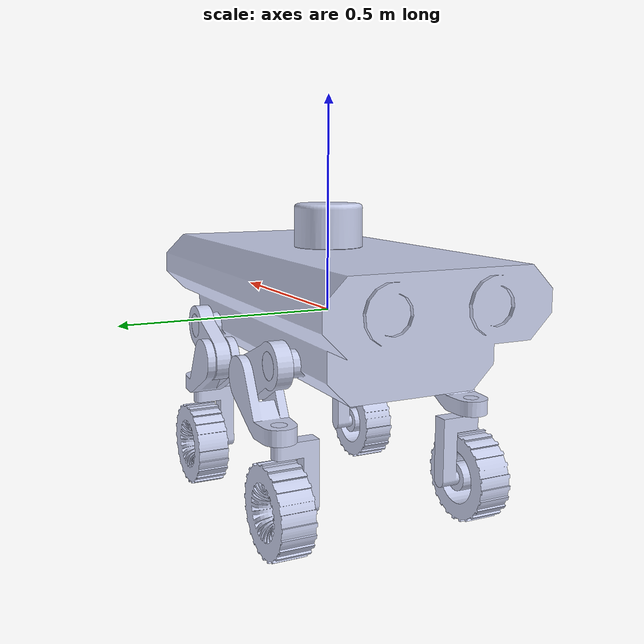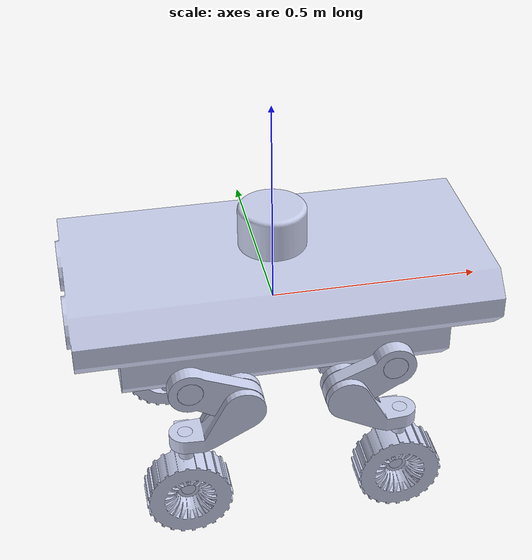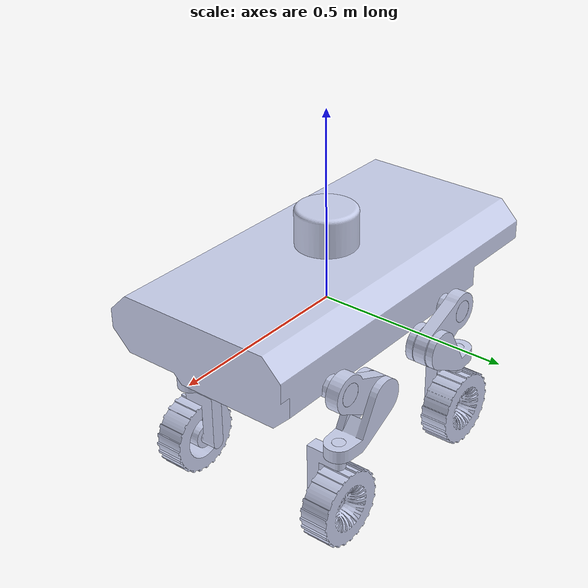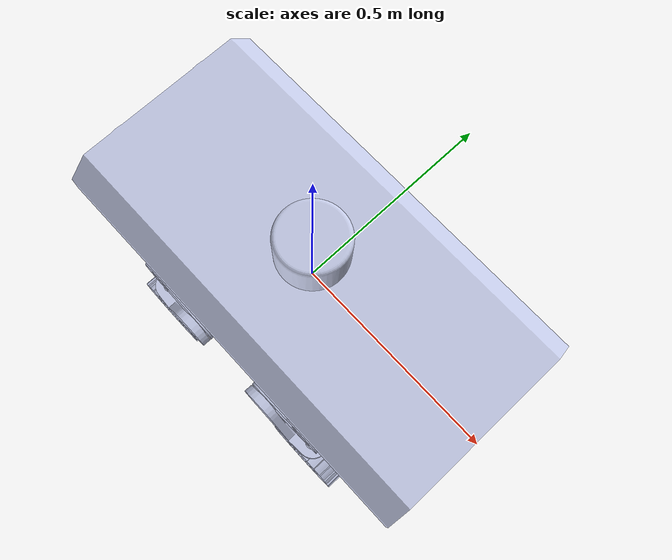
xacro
<?xml version="1.0"?>
<robot
  name="mobile_robot" xmlns:xacro="http://ros.org/wiki/xacro">

 # defining color
  <xacro:macro name="base_link_color">
      <visual>
      <material>
          <ambient>0.40 0.40 0.40 1.0</ambient>
          <diffuse>0.40 0.40 0.40 1.0</diffuse>
          <specular>0.1 0.1 0.1 1</specular>
          <emissive>0 0 0 0</emissive>
      </material>
      </visual>
  </xacro:macro>

<xacro:macro name="wheel_color">
      <visual>
      <material>
          <ambient>0.25 0.25 0.25 1.0</ambient>
          <diffuse>0.25 0.25 0.25 1.0</diffuse>
          <specular>0.1 0.1 0.1 1</specular>
          <emissive>0 0 0 0</emissive>
      </material>
      </visual>
  </xacro:macro>

  # Add this before base link
  <link name="dummy_link"></link>

  <link
    name="base_link">
    <inertial>
      <origin
        xyz="-0.0005957 2.423E-08 0.030374"
        rpy="0 0 0" />
      <mass
        value="102.84" />
      <inertia
        ixx="2.2901"
        ixy="-3.0555E-07"
        ixz="0.0027335"
        iyy="7.6029"
        iyz="2.2414E-07"
        izz="8.7762" />
    </inertial>
    <visual>
      <origin
        xyz="0 0 0"
        rpy="0 0 0" />
      <geometry>
        <mesh
          filename="package://mobile_robot/meshes/base_link.STL" />
      </geometry>
      <material
        name="">
        <color
          rgba="0.79216 0.81961 0.93333 1" />
      </material>
    </visual>
    <collision>
      <origin
        xyz="0 0 0"
        rpy="0 0 0" />
      <geometry>
        <mesh
          filename="package://mobile_robot/meshes/base_link.STL" />
      </geometry>
    </collision>
  </link>

 # Add this after base link
  <joint name="dummy_joint" type="fixed">
      <origin rpy="-1.5708 0 0" xyz="0 0 0" />
      <parent link="dummy_link"/>
      <child link="base_link"/>
  </joint>

  <link
    name="link_1a">
    <inertial>
      <origin
        xyz="-0.039563 0.0175 -0.051981"
        rpy="0 0 0" />
      <mass
        value="0.50283" />
      <inertia
        ixx="0.0013292"
        ixy="3.8948E-20"
        ixz="-0.00067322"
        iyy="0.0022628"
        iyz="4.5606E-20"
        izz="0.0010363" />
    </inertial>
    <visual>
      <origin
        xyz="0 0 0"
        rpy="0 0 0" />
      <geometry>
        <mesh
          filename="package://mobile_robot/meshes/link_1a.STL" />
      </geometry>
      <material
        name="">
        <color
          rgba="0.79216 0.81961 0.93333 1" />
      </material>
    </visual>
    <collision>
      <origin
        xyz="0 0 0"
        rpy="0 0 0" />
      <geometry>
        <mesh
          filename="package://mobile_robot/meshes/link_1a.STL" />
      </geometry>
    </collision>
  </link>
  <joint
    name="joint_1a"
    type="fixed">
    <origin
      xyz="-0.2365 0.06 0.219"
      rpy="1.5707963267949 0 -1.83259571459404" />
    <parent
      link="base_link" />
    <child
      link="link_1a" />
    <axis
      xyz="0 0 0" />
  </joint>
  <link
    name="link_2a">
    <inertial>
      <origin
        xyz="0.053752 5.5511E-17 0.012418"
        rpy="0 0 0" />
      <mass
        value="0.83985" />
      <inertia
        ixx="0.0010103"
        ixy="3.5159E-18"
        ixz="0.00045632"
        iyy="0.0038041"
        iyz="1.2247E-19"
        izz="0.0039259" />
    </inertial>
    <visual>
      <origin
        xyz="0 0 0"
        rpy="0 0 0" />
      <geometry>
        <mesh
          filename="package://mobile_robot/meshes/link_2a.STL" />
      </geometry>
      <material
        name="">
        <color
          rgba="0.79216 0.81961 0.93333 1" />
      </material>
    </visual>
    <collision>
      <origin
        xyz="0 0 0"
        rpy="0 0 0" />
      <geometry>
        <mesh
          filename="package://mobile_robot/meshes/link_2a.STL" />
      </geometry>
    </collision>
  </link>
  <joint
    name="joint_2a"
    type="fixed">
    <origin
      xyz="-0.065529 0.0175 -0.09221"
      rpy="3.1416 -1.0472 3.1416" />
    <parent
      link="link_1a" />
    <child
      link="link_2a" />
    <axis
      xyz="0 0 0" />
  </joint>
  <link
    name="link_3a">
    <inertial>
      <origin
        xyz="0.042962 0 -0.10116"
        rpy="0 0 0" />
      <mass
        value="0.35188" />
      <inertia
        ixx="0.0012021"
        ixy="2.7184E-20"
        ixz="0.00020915"
        iyy="0.0014526"
        iyz="-1.5189E-20"
        izz="0.00031657" />
    </inertial>
    <visual>
      <origin
        xyz="0 0 0"
        rpy="0 0 0" />
      <geometry>
        <mesh
          filename="package://mobile_robot/meshes/link_3a.STL" />
      </geometry>
      <material
        name="">
        <color
          rgba="0.79216 0.81961 0.93333 1" />
      </material>
    </visual>
    <collision>
      <origin
        xyz="0 0 0"
        rpy="0 0 0" />
      <geometry>
        <mesh
          filename="package://mobile_robot/meshes/link_3a.STL" />
      </geometry>
    </collision>
  </link>
  <joint
    name="joint_3a"
    type="revolute">
    <origin
      xyz="0.14328 0 -0.028284"
      rpy="2.3562 0 -1.5708" />
    <parent
      link="link_2a" />
    <child
      link="link_3a" />
    <axis
      xyz="0 0 1" />
    <limit
      lower="-3.14"
      upper="3.14"
      effort="100"
      velocity="0" />
  </joint>
  <link
    name="wheel_a">
    <inertial>
      <origin
        xyz="2.7756E-17 -0.00032568 -1.1102E-16"
        rpy="0 0 0" />
      <mass
        value="1.5436" />
      <inertia
        ixx="0.0055361"
        ixy="1.2164E-18"
        ixz="-4.5536E-18"
        iyy="0.0095744"
        iyz="8.0969E-19"
        izz="0.0055361" />
    </inertial>
    <visual>
      <origin
        xyz="0 0 0"
        rpy="0 0 0" />
      <geometry>
        <mesh
          filename="package://mobile_robot/meshes/wheel_a.STL" />
      </geometry>
      <material
        name="">
        <color
          rgba="0.79216 0.81961 0.93333 1" />
      </material>
    </visual>
    <collision>
      <origin
        xyz="0 0 0"
        rpy="0 0 0" />
      <geometry>
        <mesh
          filename="package://mobile_robot/meshes/wheel_a.STL" />
      </geometry>
    </collision>
  </link>
  <joint
    name="wheel_joint_a"
    type="continuous">
    <origin
      xyz="0 0 -0.181"
      rpy="3.1416 -1.007 -1.5708" />
    <parent
      link="link_3a" />
    <child
      link="wheel_a" />
    <axis
      xyz="0 1 0" />
  </joint>
  <link
    name="link_1b">
    <inertial>
      <origin
        xyz="-0.039563006306928 0.0175 -0.0519808529026815"
        rpy="0 0 0" />
      <mass
        value="0.502830874607731" />
      <inertia
        ixx="0.00132920865544275"
        ixy="-1.25790800504412E-19"
        ixz="-0.000673218555283649"
        iyy="0.0022628023452921"
        iyz="-1.36434319248097E-19"
        izz="0.00103625499341509" />
    </inertial>
    <visual>
      <origin
        xyz="0 0 0"
        rpy="0 0 0" />
      <geometry>
        <mesh
          filename="package://mobile_robot/meshes/link_1b.STL" />
      </geometry>
      <material
        name="">
        <color
          rgba="0.792156862745098 0.819607843137255 0.933333333333333 1" />
      </material>
    </visual>
    <collision>
      <origin
        xyz="0 0 0"
        rpy="0 0 0" />
      <geometry>
        <mesh
          filename="package://mobile_robot/meshes/link_1b.STL" />
      </geometry>
    </collision>
  </link>
  <joint
    name="joint_1b"
    type="fixed">
    <origin
      xyz="-0.2365 0.06 -0.254"
      rpy="1.5708 0 -1.8326" />
    <parent
      link="base_link" />
    <child
      link="link_1b" />
    <axis
      xyz="0 0 0" />
  </joint>
  <link
    name="link_2b">
    <inertial>
      <origin
        xyz="0.053752102153806 2.77555756156289E-17 0.012417867361845"
        rpy="0 0 0" />
      <mass
        value="0.839852789561809" />
      <inertia
        ixx="0.00101033633411804"
        ixy="2.18377621542409E-18"
        ixz="0.000456321325264451"
        iyy="0.00380409172847023"
        iyz="-4.12559137247788E-19"
        izz="0.00392594422883486" />
    </inertial>
    <visual>
      <origin
        xyz="0 0 0"
        rpy="0 0 0" />
      <geometry>
        <mesh
          filename="package://mobile_robot/meshes/link_2b.STL" />
      </geometry>
      <material
        name="">
        <color
          rgba="0.792156862745098 0.819607843137255 0.933333333333333 1" />
      </material>
    </visual>
    <collision>
      <origin
        xyz="0 0 0"
        rpy="0 0 0" />
      <geometry>
        <mesh
          filename="package://mobile_robot/meshes/link_2b.STL" />
      </geometry>
    </collision>
  </link>
  <joint
    name="joint_2b"
    type="fixed">
    <origin
      xyz="-0.065529 0.0175 -0.09221"
      rpy="3.1416 -1.0472 3.1416" />
    <parent
      link="link_1b" />
    <child
      link="link_2b" />
    <axis
      xyz="0 0 0" />
  </joint>
  <link
    name="link_3b">
    <inertial>
      <origin
        xyz="0.0429616361908162 0 -0.101156749416517"
        rpy="0 0 0" />
      <mass
        value="0.351878584084715" />
      <inertia
        ixx="0.00120209563686855"
        ixy="9.90467630203431E-20"
        ixz="0.000209154549476735"
        iyy="0.00145264496019541"
        iyz="-2.64435583025856E-20"
        izz="0.000316574406941379" />
    </inertial>
    <visual>
      <origin
        xyz="0 0 0"
        rpy="0 0 0" />
      <geometry>
        <mesh
          filename="package://mobile_robot/meshes/link_3b.STL" />
      </geometry>
      <material
        name="">
        <color
          rgba="0.792156862745098 0.819607843137255 0.933333333333333 1" />
      </material>
    </visual>
    <collision>
      <origin
        xyz="0 0 0"
        rpy="0 0 0" />
      <geometry>
        <mesh
          filename="package://mobile_robot/meshes/link_3b.STL" />
      </geometry>
    </collision>
  </link>
  <joint
    name="joint_3b"
    type="revolute">
    <origin
      xyz="0.14328 0 -0.028284"
      rpy="-2.3562 0 1.5708" />
    <parent
      link="link_2b" />
    <child
      link="link_3b" />
    <axis
      xyz="0 0 1" />
    <limit
      lower="-3.14"
      upper="3.14"
      effort="100"
      velocity="0" />
  </joint>
  <link
    name="wheel_b">
    <inertial>
      <origin
        xyz="0 -0.000325682611319128 0"
        rpy="0 0 0" />
      <mass
        value="1.54358472058328" />
      <inertia
        ixx="0.00553612528961153"
        ixy="2.24148890264748E-19"
        ixz="-2.16840434497101E-19"
        iyy="0.00957443122522794"
        iyz="3.35832558184495E-19"
        izz="0.00553612528961153" />
    </inertial>
    <visual>
      <origin
        xyz="0 0 0"
        rpy="0 0 0" />
      <geometry>
        <mesh
          filename="package://mobile_robot/meshes/wheel_b.STL" />
      </geometry>
      <material
        name="">
        <color
          rgba="0.792156862745098 0.819607843137255 0.933333333333333 1" />
      </material>
    </visual>
    <collision>
      <origin
        xyz="0 0 0"
        rpy="0 0 0" />
      <geometry>
        <mesh
          filename="package://mobile_robot/meshes/wheel_b.STL" />
      </geometry>
    </collision>
  </link>
  <joint
    name="wheel_joint_b"
    type="continuous">
    <origin
      xyz="0 0 -0.181"
      rpy="0 0.5132 1.5708" />
    <parent
      link="link_3b" />
    <child
      link="wheel_b" />
    <axis
      xyz="0 1 0" />
  </joint>
  <link
    name="link_1c">
    <inertial>
      <origin
        xyz="-0.0395630063069281 0.0175 -0.0519808529026815"
        rpy="0 0 0" />
      <mass
        value="0.502830874607731" />
      <inertia
        ixx="0.00132920865544275"
        ixy="-6.1654949534134E-20"
        ixz="-0.00067321855528365"
        iyy="0.0022628023452921"
        iyz="7.59540540768857E-21"
        izz="0.00103625499341509" />
    </inertial>
    <visual>
      <origin
        xyz="0 0 0"
        rpy="0 0 0" />
      <geometry>
        <mesh
          filename="package://mobile_robot/meshes/link_1c.STL" />
      </geometry>
      <material
        name="">
        <color
          rgba="0.792156862745098 0.819607843137255 0.933333333333333 1" />
      </material>
    </visual>
    <collision>
      <origin
        xyz="0 0 0"
        rpy="0 0 0" />
      <geometry>
        <mesh
          filename="package://mobile_robot/meshes/link_1c.STL" />
      </geometry>
    </collision>
  </link>
  <joint
    name="joint_1c"
    type="fixed">
    <origin
      xyz="0.2365 0.06 -0.254"
      rpy="1.5708 0 0.39187" />
    <parent
      link="base_link" />
    <child
      link="link_1c" />
    <axis
      xyz="0 0 0" />
  </joint>
  <link
    name="link_2c">
    <inertial>
      <origin
        xyz="0.0537521021538061 5.55111512312578E-17 0.012417867361845"
        rpy="0 0 0" />
      <mass
        value="0.83985278956181" />
      <inertia
        ixx="0.00101033633411805"
        ixy="2.32765525104793E-18"
        ixz="0.000456321325264452"
        iyy="0.00380409172847023"
        iyz="3.76989989844925E-20"
        izz="0.00392594422883488" />
    </inertial>
    <visual>
      <origin
        xyz="0 0 0"
        rpy="0 0 0" />
      <geometry>
        <mesh
          filename="package://mobile_robot/meshes/link_2c.STL" />
      </geometry>
      <material
        name="">
        <color
          rgba="0.792156862745098 0.819607843137255 0.933333333333333 1" />
      </material>
    </visual>
    <collision>
      <origin
        xyz="0 0 0"
        rpy="0 0 0" />
      <geometry>
        <mesh
          filename="package://mobile_robot/meshes/link_2c.STL" />
      </geometry>
    </collision>
  </link>
  <joint
    name="joint_2c"
    type="fixed">
    <origin
      xyz="-0.074188 0.0175 -0.08461"
      rpy="3.1416 0.39353 0" />
    <parent
      link="link_1c" />
    <child
      link="link_2c" />
    <axis
      xyz="0 0 0" />
  </joint>
  <link
    name="link_3c">
    <inertial>
      <origin
        xyz="0.0429616361908162 0.0175 0.0248432505834826"
        rpy="0 0 0" />
      <mass
        value="0.351878584084715" />
      <inertia
        ixx="0.00120209563686855"
        ixy="-1.83460442767597E-20"
        ixz="0.000209154549476735"
        iyy="0.00145264496019541"
        iyz="1.21046182851412E-19"
        izz="0.000316574406941379" />
    </inertial>
    <visual>
      <origin
        xyz="0 0 0"
        rpy="0 0 0" />
      <geometry>
        <mesh
          filename="package://mobile_robot/meshes/link_3c.STL" />
      </geometry>
      <material
        name="">
        <color
          rgba="0.792156862745098 0.819607843137255 0.933333333333333 1" />
      </material>
    </visual>
    <collision>
      <origin
        xyz="0 0 0"
        rpy="0 0 0" />
      <geometry>
        <mesh
          filename="package://mobile_robot/meshes/link_3c.STL" />
      </geometry>
    </collision>
  </link>
  <joint
    name="joint_3c"
    type="fixed">
    <origin
      xyz="0.24475 0 0.048437"
      rpy="2.3562 0 -1.5708" />
    <parent
      link="link_2c" />
    <child
      link="link_3c" />
    <axis
      xyz="0 0 0" />
  </joint>
  <link
    name="wheel_c">
    <inertial>
      <origin
        xyz="5.55111512312578E-17 -0.00032568261131935 -1.11022302462516E-16"
        rpy="0 0 0" />
      <mass
        value="1.54358472058328" />
      <inertia
        ixx="0.00553612528961155"
        ixy="4.16479688089891E-19"
        ixz="-1.30104260698261E-18"
        iyy="0.00957443122522799"
        iyz="5.28611900711342E-19"
        izz="0.00553612528961156" />
    </inertial>
    <visual>
      <origin
        xyz="0 0 0"
        rpy="0 0 0" />
      <geometry>
        <mesh
          filename="package://mobile_robot/meshes/wheel_c.STL" />
      </geometry>
      <material
        name="">
        <color
          rgba="0.792156862745098 0.819607843137255 0.933333333333333 1" />
      </material>
    </visual>
    <collision>
      <origin
        xyz="0 0 0"
        rpy="0 0 0" />
      <geometry>
        <mesh
          filename="package://mobile_robot/meshes/wheel_c.STL" />
      </geometry>
    </collision>
  </link>
  <joint
    name="wheel_joint_c"
    type="continuous">
    <origin
      xyz="0 0.0175 -0.055"
      rpy="0 0.48844 1.5708" />
    <parent
      link="link_3c" />
    <child
      link="wheel_c" />
    <axis
      xyz="0 1 0" />
  </joint>
  <link
    name="link_1d">
    <inertial>
      <origin
        xyz="-0.0395630063069281 0.0175 -0.0519808529026815"
        rpy="0 0 0" />
      <mass
        value="0.502830874607731" />
      <inertia
        ixx="0.00132920865544275"
        ixy="-1.2946873241384E-20"
        ixz="-0.000673218555283649"
        iyy="0.0022628023452921"
        iyz="1.94753182428243E-22"
        izz="0.00103625499341509" />
    </inertial>
    <visual>
      <origin
        xyz="0 0 0"
        rpy="0 0 0" />
      <geometry>
        <mesh
          filename="package://mobile_robot/meshes/link_1d.STL" />
      </geometry>
      <material
        name="">
        <color
          rgba="0.792156862745098 0.819607843137255 0.933333333333333 1" />
      </material>
    </visual>
    <collision>
      <origin
        xyz="0 0 0"
        rpy="0 0 0" />
      <geometry>
        <mesh
          filename="package://mobile_robot/meshes/link_1d.STL" />
      </geometry>
    </collision>
  </link>
  <joint
    name="joint_1d"
    type="fixed">
    <origin
      xyz="0.2365 0.06 0.219"
      rpy="1.5708 0 0.39187" />
    <parent
      link="base_link" />
    <child
      link="link_1d" />
    <axis
      xyz="0 0 0" />
  </joint>
  <link
    name="link_2">
    <inertial>
      <origin
        xyz="0.0537521021538062 2.77555756156289E-17 0.012417867361845"
        rpy="0 0 0" />
      <mass
        value="0.83985278956181" />
      <inertia
        ixx="0.00101033633411805"
        ixy="1.14413683967417E-18"
        ixz="0.000456321325264452"
        iyy="0.00380409172847024"
        iyz="2.3886409977526E-19"
        izz="0.00392594422883488" />
    </inertial>
    <visual>
      <origin
        xyz="0 0 0"
        rpy="0 0 0" />
      <geometry>
        <mesh
          filename="package://mobile_robot/meshes/link_2.STL" />
      </geometry>
      <material
        name="">
        <color
          rgba="0.792156862745098 0.819607843137255 0.933333333333333 1" />
      </material>
    </visual>
    <collision>
      <origin
        xyz="0 0 0"
        rpy="0 0 0" />
      <geometry>
        <mesh
          filename="package://mobile_robot/meshes/link_2.STL" />
      </geometry>
    </collision>
  </link>
  <joint
    name="joint_2"
    type="fixed">
    <origin
      xyz="-0.074188 0.0175 -0.08461"
      rpy="3.1416 0.39353 0" />
    <parent
      link="link_1d" />
    <child
      link="link_2" />
    <axis
      xyz="0 0 0" />
  </joint>
  <link
    name="link_3d">
    <inertial>
      <origin
        xyz="0.0429616361908162 0.0175 0.0248432505834826"
        rpy="0 0 0" />
      <mass
        value="0.351878584084715" />
      <inertia
        ixx="0.00120209563686855"
        ixy="-3.5613123466281E-20"
        ixz="0.000209154549476735"
        iyy="0.00145264496019541"
        iyz="-1.97938259373571E-19"
        izz="0.000316574406941379" />
    </inertial>
    <visual>
      <origin
        xyz="0 0 0"
        rpy="0 0 0" />
      <geometry>
        <mesh
          filename="package://mobile_robot/meshes/link_3d.STL" />
      </geometry>
      <material
        name="">
        <color
          rgba="0.792156862745098 0.819607843137255 0.933333333333333 1" />
      </material>
    </visual>
    <collision>
      <origin
        xyz="0 0 0"
        rpy="0 0 0" />
      <geometry>
        <mesh
          filename="package://mobile_robot/meshes/link_3d.STL" />
      </geometry>
    </collision>
  </link>
  <joint
    name="joint_3d"
    type="fixed">
    <origin
      xyz="0.22001 0 0.073186"
      rpy="-2.3562 0 1.5708" />
    <parent
      link="link_2" />
    <child
      link="link_3d" />
    <axis
      xyz="0 0 0" />
  </joint>
  <link
    name="wheel_d">
    <inertial>
      <origin
        xyz="0 -0.000325682611318989 0"
        rpy="0 0 0" />
      <mass
        value="1.54358472058328" />
      <inertia
        ixx="0.00553612528961153"
        ixy="2.76130854728311E-18"
        ixz="-3.03576608295941E-18"
        iyy="0.00957443122522794"
        iyz="-1.43498117338083E-19"
        izz="0.00553612528961153" />
    </inertial>
    <visual>
      <origin
        xyz="0 0 0"
        rpy="0 0 0" />
      <geometry>
        <mesh
          filename="package://mobile_robot/meshes/wheel_d.STL" />
      </geometry>
      <material
        name="">
        <color
          rgba="0.792156862745098 0.819607843137255 0.933333333333333 1" />
      </material>
    </visual>
    <collision>
      <origin
        xyz="0 0 0"
        rpy="0 0 0" />
      <geometry>
        <mesh
          filename="package://mobile_robot/meshes/wheel_d.STL" />
      </geometry>
    </collision>
  </link>
  <joint
    name="wheel_joint_d"
    type="continuous">
    <origin
      xyz="0 0.0175 -0.055"
      rpy="0 0.77621 1.5708" />
    <parent
      link="link_3d" />
    <child
      link="wheel_d" />
    <axis
      xyz="0 1 0" />
  </joint>
  <link
    name="lidar">
    <inertial>
      <origin
        xyz="1.16356825275844E-18 8.31876439690872E-18 0.0497497202049783"
        rpy="0 0 0" />
      <mass
        value="2.00013341899983" />
      <inertia
        ixx="0.00483668426767401"
        ixy="-2.16840434497101E-19"
        ixz="1.32977116051093E-19"
        iyy="0.00483668426767401"
        iyz="1.75346905687105E-19"
        izz="0.00637045764760341" />
    </inertial>
    <visual>
      <origin
        xyz="0 0 0"
        rpy="0 0 0" />
      <geometry>
        <mesh
          filename="package://mobile_robot/meshes/lidar.STL" />
      </geometry>
      <material
        name="">
        <color
          rgba="0.792156862745098 0.819607843137255 0.933333333333333 1" />
      </material>
    </visual>
    <collision>
      <origin
        xyz="0 0 0"
        rpy="0 0 0" />
      <geometry>
        <mesh
          filename="package://mobile_robot/meshes/lidar.STL" />
      </geometry>
    </collision>
  </link>
  <joint
    name="lidar_joint"
    type="fixed">
    <origin
      xyz="0 -0.151 0.0"
      rpy="-1.5708 0.44382 -3.1416" />
    <parent
      link="base_link" />
    <child
      link="lidar" />
    <axis
      xyz="0 0 1" />
  </joint>

# adding color to links
  <gazebo reference="base_link">
      <xacro:base_link_color />
  </gazebo>

  <gazebo reference="wheel_a">
      <xacro:wheel_color />
  </gazebo>

  <gazebo reference="wheel_b">
      <xacro:wheel_color />
  </gazebo>

  <gazebo reference="wheel_c">
      <xacro:wheel_color />
  </gazebo>

  <gazebo reference="wheel_d">
      <xacro:wheel_color />
  </gazebo>

# Controllers Start
  <ros2_control name="GazeboSystem" type="system">
  <hardware>
      <plugin>gazebo_ros2_control/GazeboSystem</plugin>
  </hardware>

 # Velocity Controllers

  <joint name="wheel_joint_a">
      <command_interface name="velocity">
          <param name="min">-1000.0</param>
          <param name="max">1000.0</param>
      </command_interface>
      <state_interface name="position"/>
      <state_interface name="velocity"/>
  </joint>

  <joint name="wheel_joint_b">
      <command_interface name="velocity">
          <param name="min">-1000.0</param>
          <param name="max">1000.0</param>
      </command_interface>
      <state_interface name="position"/>
      <state_interface name="velocity"/>
  </joint>

  <joint name="wheel_joint_c">
      <command_interface name="velocity">
          <param name="min">-1000.0</param>
          <param name="max">1000.0</param>
      </command_interface>
      <state_interface name="position"/>
      <state_interface name="velocity"/>
  </joint>

  <joint name="wheel_joint_d">
      <command_interface name="velocity">
          <param name="min">-1000.0</param>
          <param name="max">1000.0</param>
      </command_interface>
      <state_interface name="position"/>
      <state_interface name="velocity"/>
  </joint>

 # Position Controller
  <joint name="joint_3a">
      <command_interface name="position">
          <param name="min">-3.14</param>
          <param name="max">3.14</param>
      </command_interface>
      <state_interface name="position"/>
      <state_interface name="velocity"/>
  </joint>

  <joint name="joint_3b">
      <command_interface name="position">
          <param name="min">-3.14</param>
          <param name="max">3.14</param>
      </command_interface>
      <state_interface name="position"/>
      <state_interface name="velocity"/>
  </joint>

  </ros2_control>

  <gazebo>
      <plugin filename="libgazebo_ros2_control.so" name="gazebo_ros2_control">
          <parameters>$(find mobile_robot)/config/control.yaml</parameters>
      </plugin>
  </gazebo>
  #Controller end

#Lidar
<gazebo reference="lidar">
  <sensor name="lidar" type="ray">
    <pose>0.0 0.0 0.0 0 0 0</pose>
    <always_on>true</always_on>
    <visualize>true</visualize>
    <update_rate>5</update_rate>
    <ray>
      <scan>
        <horizontal>
          <samples>360</samples>
          <resolution>1.00000</resolution>
          <min_angle>0.000000</min_angle>
          <max_angle>6.280000</max_angle>
        </horizontal>
      </scan>
      <range>
        <min>0.120000</min>
        <max>3.5</max>
        <resolution>0.015000</resolution>
      </range>
      <noise>
        <type>gaussian</type>
        <mean>0.0</mean>
        <stddev>0.01</stddev>
      </noise>
    </ray>
    <plugin name="scan" filename="libgazebo_ros_ray_sensor.so">
      <ros>
        <remapping>~/out:=scan</remapping>
      </ros>
      <output_type>sensor_msgs/LaserScan</output_type>
      <frame_name>lidar</frame_name>
    </plugin>
  </sensor>
  </gazebo>

 # IMU
 <gazebo reference="base_link">
  <gravity>true</gravity>
  <sensor name="imu_sensor" type="imu">
    <always_on>true</always_on>
    <update_rate>100</update_rate>
    <visualize>true</visualize>
    <topic>__default_topic__</topic>
    <plugin filename="libgazebo_ros_imu_sensor.so" name="imu_plugin">
      <topicName>imu</topicName>
      <bodyName>base_link</bodyName>
      <updateRateHZ>10.0</updateRateHZ>
      <gaussianNoise>0.0</gaussianNoise>
      <xyzOffset>0 0 0</xyzOffset>
      <rpyOffset>0 0 0</rpyOffset>
      <frameName>base_link</frameName>
      <initialOrientationAsReference>false</initialOrientationAsReference>
    </plugin>
    <pose>0 0 0 0 0 0</pose>
  </sensor>
</gazebo>

</robot>
